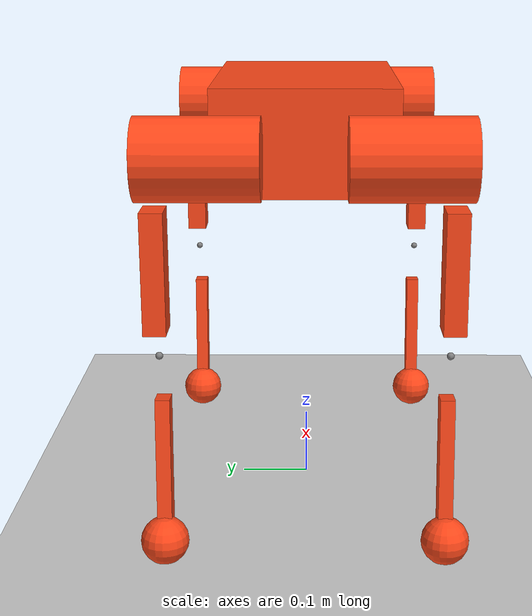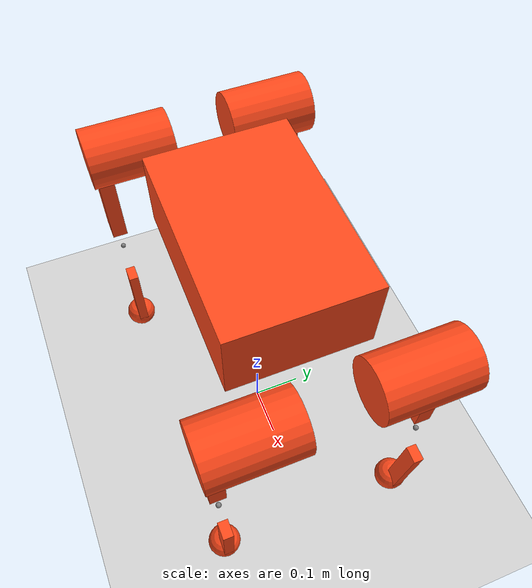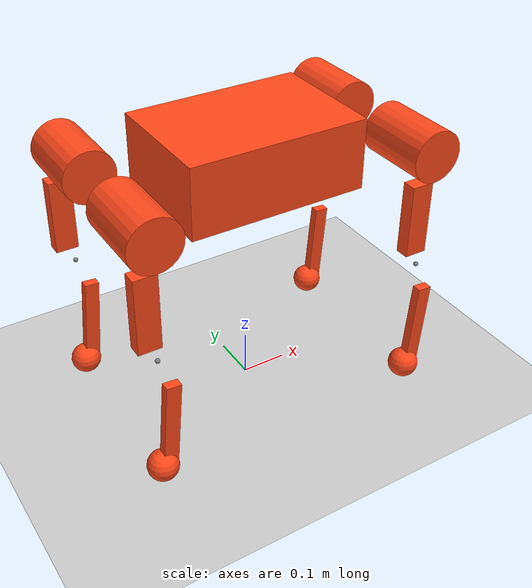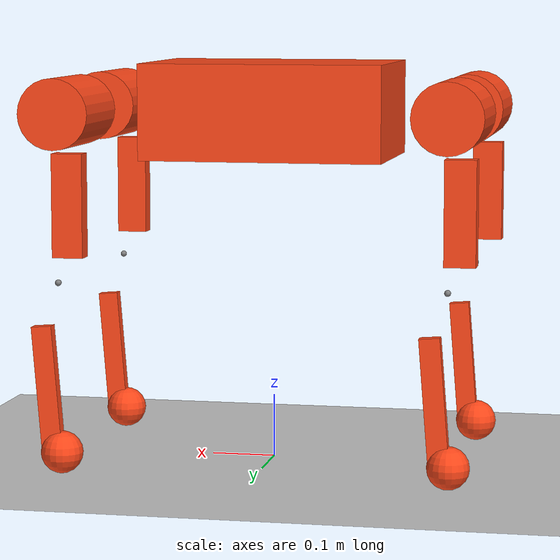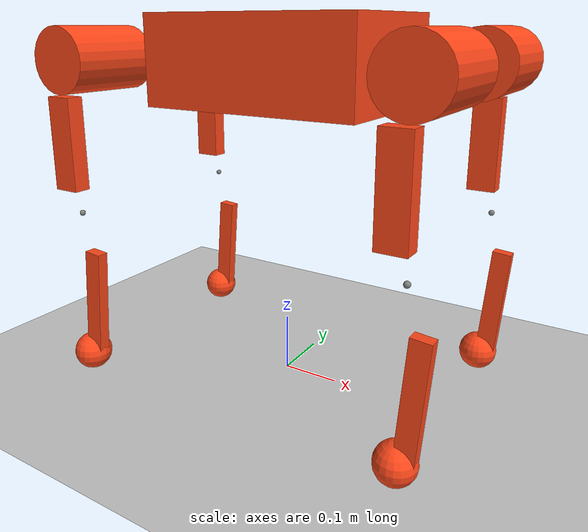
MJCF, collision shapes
<mujoco model="panda3v2">
  <default>
    <default class="robot">
    <joint damping="0.1" armature="0.01" frictionloss="0.2"/>

      <default class="abduction">
        <joint axis="1 0 0" range="-1.047 1.047"/>
        <motor ctrlrange="-60 60"/>
      </default>
      <default class="hip">
        <motor ctrlrange="-60 60"/>
        <default class="front_hip">
          <joint range="-1.571 3.75"/>
        </default>
        <default class="back_hip">
          <joint range="-1.571 3.75"/>
        </default>
      </default>
      <default class="knee">
        <joint range="-2.53 0.35"/>
        <motor ctrlrange="-90 90"/>
      </default>

      <default class="visual">
        <geom material="visualgeom" contype="0" conaffinity="0" group="2" />
      </default>
      <default class="collision">
        <geom material="collision_material" condim="3" contype="0" conaffinity="1" priority="1" group="1" solref="0.005 1" solimp="0.99 0.999 1e-05" friction="2 0.01 0.01" />
      </default>
    </default>
  </default>

  <compiler angle="radian" />

  <asset>
    <material name="blue" rgba="0.7 0.7 0.7 1" />
    <material name="default_material" rgba="0.7 0.7 0.7 1" />
    <material name="collision_material" rgba="1.0 0.28 0.1 0.9" />
    <mesh name="base_link.STL" file="./meshes/base_link.STL" />
    <mesh name="FL_hip_Link.STL" file="./meshes/FL_hip_Link.STL" />
    <mesh name="FL_thigh_Link.STL" file="./meshes/FL_thigh_Link.STL" />
    <mesh name="FL_calf_Link.STL" file="./meshes/FL_calf_Link.STL" />
    <mesh name="FL_foot_Link.STL" file="./meshes/FL_foot_Link.STL" />
    <mesh name="FR_hip_Link.STL" file="./meshes/FR_hip_Link.STL" />
    <mesh name="FR_thigh_Link.STL" file="./meshes/FR_thigh_Link.STL" />
    <mesh name="FR_calf_Link.STL" file="./meshes/FR_calf_Link.STL" />
    <mesh name="FR_foot_Link.STL" file="./meshes/FR_foot_Link.STL" />
    <mesh name="RL_hip_Link.STL" file="./meshes/RL_hip_Link.STL" />
    <mesh name="RL_thigh_Link.STL" file="./meshes/RL_thigh_Link.STL" />
    <mesh name="RL_calf_Link.STL" file="./meshes/RL_calf_Link.STL" />
    <mesh name="RL_foot_Link.STL" file="./meshes/RL_foot_Link.STL" />
    <mesh name="RR_hip_Link.STL" file="./meshes/RR_hip_Link.STL" />
    <mesh name="RR_thigh_Link.STL" file="./meshes/RR_thigh_Link.STL" />
    <mesh name="RR_calf_Link.STL" file="./meshes/RR_calf_Link.STL" />
    <mesh name="RR_foot_Link.STL" file="./meshes/RR_foot_Link.STL" />
  </asset>

  <worldbody>

      <light
          name="light"
          pos="0 0 3"
          dir="0 0 -1"
          diffuse="0.8 0.8 0.8"
      />

      <geom
          name="floor"
          type="plane"
          pos="0 0 0"
          size="10 10 0.1"
          friction="1.0 0.01 0.001"
          contype="1"
          conaffinity="1"
          condim="3"
          rgba="0.8 0.8 0.8 1"
      />

    <body name="base_link" pos="0.00000000 0.00000000 0.55800000" quat="1 0 0 0" childclass="robot">
    <camera name="depth_cam"
        fovy="58"
        pos="0.3895 0 0.1115"
        quat="0.5792279653395693 -0.40557978767263886 -0.4055797876726387 0.5792279653395692"/>
    <inertial
      pos="0.0097705 -0.0002316 -0.0017244"
      mass="21.0994282"
      fullinertia="0.1139705 0.5087214 0.5559912 0.0000566 -0.0128284 0.0002866" />
      <site name="imu" pos="0 0 0" />
      <freejoint name="floating_base" />
      <geom name="base_link_collision" pos="0 0 -0.00" quat="1.0 0.0 0.0 0.0" type="box" size="0.19 0.13 0.075" class="collision" />
      <geom name="base_link_visual" pos="0 0 0" quat="1.0 0.0 0.0 0.0" material="blue" type="mesh" mesh="base_link.STL" class="visual" />
      <body name="FL_hip_Link" pos="0.30112 0.071 0" quat="1.0 0.0 0.0 0.0">
        <joint name="FL_hip_joint" type="hinge" ref="0.0" class="abduction" range="-0.8 0.8" axis="1 0 0" />
        <site name="FL_hip_joint_site" pos="0 0 0" quat="1 0 0 0" />
        <inertial pos="-0.0063170 -0.0104337 0.0000336" quat="1.0 0.0 0.0 0.0" mass="1.2062863" diaginertia="0.0011067 0.0015109 0.0014173" />
        <geom name="FL_hip_Link_visual" pos="0 0 0" quat="1.0 0.0 0.0 0.0" material="blue" type="mesh" mesh="FL_hip_Link.STL" class="visual" />
        <body name="FL_thigh_Link" pos="0 0.12 0" quat="1.0 0.0 0.0 0.0">
          <joint name="FL_thigh_joint" type="hinge" ref="0.0" class="front_hip" range="-1.62 3.735" axis="0 1 0" />
          <site name="FL_thigh_joint_site" pos="0 0 0" quat="1 0 0 0" />
          <inertial pos="-0.0025333 -0.0351757 -0.0240039" quat="1.0 0.0 0.0 0.0" mass="2.1119373" diaginertia="0.011934 0.0110032 0.0035481" />
          <geom name="FL_thigh_Link_collision_0" pos="0 -0.056 0" quat="0.7073882691671998 0.706825181105366 0.0 0.0" type="cylinder" size="0.055 0.08" class="collision" />
          <geom name="FL_thigh_Link_collision_1" pos="-0.019 0 -0.14" quat="1.0 0.0 0.0 0.0" type="box" size="0.024 0.015 0.08" class="collision" />
          <geom name="FL_thigh_Link_visual" pos="0 0 0" quat="1.0 0.0 0.0 0.0" material="blue" type="mesh" mesh="FL_thigh_Link.STL" class="visual" />
          <body name="FL_calf_Link" pos="0 0 -0.26" quat="1.0 0.0 0.0 0.0">
            <joint name="FL_calf_joint" type="hinge" ref="0.0" class="knee" range="-2.443 -0.524" axis="0 1 0" />
            <site name="FL_calf_joint_site" pos="0 0 0" quat="1 0 0 0" />
            <inertial pos="0.0086224 -0.0000233 -0.1393878" quat="1.0 0.0 0.0 0.0" mass="0.2522825" diaginertia="0.003035 0.0030849 7.71e-05" />
            <geom name="FL_calf_Link_collision" pos="0.018 0 -0.17" quat="0.6785569656238399 0.0 0.7345477822465786 0.0" type="box" size="0.1025 0.01 0.016" class="collision" />
            <geom name="FL_calf_Link_visual" pos="0 0 0" quat="1.0 0.0 0.0 0.0" material="blue" type="mesh" mesh="FL_calf_Link.STL" class="visual" />
            <body name="FL_foot_Link" pos="0 0 -0.26" quat="1.0 0.0 0.0 0.0">
              <inertial pos="-0.00856838166588392 4.29463100015681E-05 -0.0136195483876302" quat="1.0 0.0 0.0 0.0" mass="0.0432172775947601" diaginertia="1.16e-05 1.86e-05 1.61e-05" />
              <geom name="FL_foot_Link_collision" pos="-0.003 0 -0.005" quat="1.0 0.0 0.0 0.0" type="sphere" size="0.033" class="collision" />
              <geom name="FL_foot_Link_visual" pos="0 0 0" quat="1.0 0.0 0.0 0.0" material="blue" type="mesh" mesh="FL_foot_Link.STL" class="visual" />
            </body>
          </body>
        </body>
      </body>
      <body name="FR_hip_Link" pos="0.30112 -0.071 0" quat="1.0 0.0 0.0 0.0">
        <joint name="FR_hip_joint" type="hinge" ref="0.0" class="abduction" range="-0.8 0.8" axis="1 0 0" />
        <site name="FR_hip_joint_site" pos="0 0 0" quat="1 0 0 0" />
        <inertial pos="-0.0063193 0.0112453 0.0000215" quat="1.0 0.0 0.0 0.0" mass="1.2062863" diaginertia="0.001111 0.0015108 0.0014247" />
        <geom name="FR_hip_Link_visual" pos="0 0 0" quat="1.0 0.0 0.0 0.0" material="blue" type="mesh" mesh="FR_hip_Link.STL" class="visual" />
        <body name="FR_thigh_Link" pos="0 -0.12 0" quat="1.0 0.0 0.0 0.0">
          <joint name="FR_thigh_joint" type="hinge" ref="0.0" class="front_hip" range="-1.62 3.73" axis="0 1 0" />
          <site name="FR_thigh_joint_site" pos="0 0 0" quat="1 0 0 0" />
          <inertial pos="-0.0025911 0.0351590 -0.0233429" quat="1.0 0.0 0.0 0.0" mass="2.1112879" diaginertia="0.0116509 0.0107174 0.0035417" />
          <geom name="FR_thigh_Link_collision_0" pos="0 0.056 0" quat="0.7073882691671998 0.706825181105366 0.0 0.0" type="cylinder" size="0.055 0.08" class="collision" />
          <geom name="FR_thigh_Link_collision_1" pos="-0.019 0 -0.14" quat="1.0 0.0 0.0 0.0" type="box" size="0.024 0.015 0.08" class="collision" />
          <geom name="FR_thigh_Link_visual" pos="0 0 0" quat="1.0 0.0 0.0 0.0" material="blue" type="mesh" mesh="FR_thigh_Link.STL" class="visual" />
          <body name="FR_calf_Link" pos="0 0 -0.26" quat="1.0 0.0 0.0 0.0">
            <joint name="FR_calf_joint" type="hinge" ref="0.0" class="knee" range="-2.44 -0.52" axis="0 1 0" />
            <site name="FR_calf_joint_site" pos="0 0 0" quat="1 0 0 0" />
            <inertial pos="0.0086224 0.0000168 -0.1393878" quat="1.0 0.0 0.0 0.0" mass="0.2522825" diaginertia="0.003035 0.0030849 7.71e-05" />
            <geom name="FR_calf_Link_collision" pos="0.018 0 -0.17" quat="0.6785569656238399 0.0 0.7345477822465786 0.0" type="box" size="0.1025 0.01 0.016" class="collision" />
            <geom name="FR_calf_Link_visual" pos="0 0 0" quat="1.0 0.0 0.0 0.0" material="blue" type="mesh" mesh="FR_calf_Link.STL" class="visual" />
            <body name="FR_foot_Link" pos="0 0 -0.26" quat="1.0 0.0 0.0 0.0">
              <inertial pos="-0.00856839389569219 4.29458727269072E-05 -0.0136195555784336" quat="1.0 0.0 0.0 0.0" mass="0.0432172596833728" diaginertia="1.16e-05 1.86e-05 1.61e-05" />
              <geom name="FR_foot_Link_collision" pos="-0.003 0 -0.005" quat="1.0 0.0 0.0 0.0" type="sphere" size="0.033" class="collision" />
              <geom name="FR_foot_Link_visual" pos="0 0 0" quat="1.0 0.0 0.0 0.0" material="blue" type="mesh" mesh="FR_foot_Link.STL" class="visual" />
            </body>
          </body>
        </body>
      </body>
      <body name="RL_hip_Link" pos="-0.30112 0.071 0" quat="1.0 0.0 0.0 0.0">
        <joint name="RL_hip_joint" type="hinge" ref="0.0" class="abduction" range="-0.8 0.8" axis="1 0 0" />
        <site name="RL_hip_joint_site" pos="0 0 0" quat="1 0 0 0" />
        <inertial pos="0.0063193 -0.0112382 0.0000215" quat="1.0 0.0 0.0 0.0" mass="1.2062863" diaginertia="0.0011117 0.0015108 0.0014254" />
        <geom name="RL_hip_Link_visual" pos="0 0 0" quat="1.0 0.0 0.0 0.0" material="blue" type="mesh" mesh="RL_hip_Link.STL" class="visual" />
        <body name="RL_thigh_Link" pos="0 0.12 0" quat="1.0 0.0 0.0 0.0">
          <joint name="RL_thigh_joint" type="hinge" ref="0.0" class="back_hip" range="-1.62 3.73" axis="0 1 0" />
          <site name="RL_thigh_joint_site" pos="0 0 0" quat="1 0 0 0" />
          <inertial pos="-0.0025928 -0.0351757 -0.0235082" quat="1.0 0.0 0.0 0.0" mass="2.1119373" diaginertia="0.0116952 0.0107683 0.0035521" />
          <geom name="RL_thigh_Link_collision_0" pos="0 -0.056 0" quat="0.7073882691671998 0.706825181105366 0.0 0.0" type="cylinder" size="0.055 0.08" class="collision" />
          <geom name="RL_thigh_Link_collision_1" pos="-0.019 0 -0.14" quat="1.0 0.0 0.0 0.0" type="box" size="0.024 0.015 0.08" class="collision" />
          <geom name="RL_thigh_Link_visual" pos="0 0 0" quat="1.0 0.0 0.0 0.0" material="blue" type="mesh" mesh="RL_thigh_Link.STL" class="visual" />
          <body name="RL_calf_Link" pos="0 0 -0.26" quat="1.0 0.0 0.0 0.0">
            <joint name="RL_calf_joint" type="hinge" ref="0.0" class="knee" range="-2.44 -0.52" axis="0 1 0" />
            <site name="RL_calf_joint_site" pos="0 0 0" quat="1 0 0 0" />
            <inertial pos="0.0086224 0.0000500 -0.1393878" quat="1.0 0.0 0.0 0.0" mass="0.2522825" diaginertia="0.003035 0.0030849 7.71e-05" />
            <geom name="RL_calf_Link_collision" pos="0.018 0 -0.17" quat="0.6785569656238399 0.0 0.7345477822465786 0.0" type="box" size="0.1025 0.01 0.016" class="collision" />
            <geom name="RL_calf_Link_visual" pos="0 0 0" quat="1.0 0.0 0.0 0.0" material="blue" type="mesh" mesh="RL_calf_Link.STL" class="visual" />
            <body name="RL_foot_Link" pos="0 0 -0.26" quat="1.0 0.0 0.0 0.0">
              <inertial pos="-0.00856837350876061 4.29345320518415E-05 -0.0136195228137627" quat="1.0 0.0 0.0 0.0" mass="0.0432172612927212" diaginertia="1.16e-05 1.86e-05 1.61e-05" />
              <geom name="RL_foot_Link_collision" pos="-0.003 0 -0.005" quat="1.0 0.0 0.0 0.0" type="sphere" size="0.033" class="collision" />
              <geom name="RL_foot_Link_visual" pos="0 0 0" quat="1.0 0.0 0.0 0.0" material="blue" type="mesh" mesh="RL_foot_Link.STL" class="visual" />
            </body>
          </body>
        </body>
      </body>
      <body name="RR_hip_Link" pos="-0.30112 -0.071 0" quat="1.0 0.0 0.0 0.0">
        <joint name="RR_hip_joint" type="hinge" ref="0.0" class="abduction" range="-0.8 0.8" axis="1 0 0" />
        <site name="RR_hip_joint_site" pos="0 0 0" quat="1 0 0 0" />
        <inertial pos="0.0060691 0.0112453 0.0001065" quat="1.0 0.0 0.0 0.0" mass="1.2062863" diaginertia="0.0011131 0.0015145 0.0014264" />
        <geom name="RR_hip_Link_visual" pos="0 0 0" quat="1.0 0.0 0.0 0.0" material="blue" type="mesh" mesh="RR_hip_Link.STL" class="visual" />
        <body name="RR_thigh_Link" pos="0 -0.12 0" quat="1.0 0.0 0.0 0.0">
          <joint name="RR_thigh_joint" type="hinge" ref="0.0" class="back_hip" range="-1.62 3.73" axis="0 1 0" />
          <site name="RR_thigh_joint_site" pos="0 0 0" quat="1 0 0 0" />
          <inertial pos="-0.0020895 0.0351533 -0.0236942" quat="1.0 0.0 0.0 0.0" mass="2.1112879" diaginertia="0.0117955 0.0108567 0.0035375" />
          <geom name="RR_thigh_Link_collision_0" pos="0 0.056 0" quat="0.7073882691671998 0.706825181105366 0.0 0.0" type="cylinder" size="0.055 0.08" class="collision" />
          <geom name="RR_thigh_Link_collision_1" pos="-0.019 0 -0.14" quat="1.0 0.0 0.0 0.0" type="box" size="0.024 0.015 0.08" class="collision" />
          <geom name="RR_thigh_Link_visual" pos="0 0 0" quat="1.0 0.0 0.0 0.0" material="blue" type="mesh" mesh="RR_thigh_Link.STL" class="visual" />
          <body name="RR_calf_Link" pos="0 0 -0.26" quat="1.0 0.0 0.0 0.0">
            <joint name="RR_calf_joint" type="hinge" ref="0.0" class="knee" range="-2.44 -0.52" axis="0 1 0" />
            <site name="RR_calf_joint_site" pos="0 0 0" quat="1 0 0 0" />
            <inertial pos="0.0086224 0.0000134 -0.1393878" quat="1.0 0.0 0.0 0.0" mass="0.2522825" diaginertia="0.003035 0.0030849 7.71e-05" />
            <geom name="RR_calf_Link_collision" pos="0.018 0 -0.17" quat="0.6785569656238399 0.0 0.7345477822465786 0.0" type="box" size="0.1025 0.01 0.016" class="collision" />
            <geom name="RR_calf_Link_visual" pos="0 0 0" quat="1.0 0.0 0.0 0.0" material="blue" type="mesh" mesh="RR_calf_Link.STL" class="visual" />
            <body name="RR_foot_Link" pos="0 0 -0.260000000000001" quat="1.0 0.0 0.0 0.0">
              <inertial pos="-0.00856837316558678 4.29343732643028E-05 -0.0136195231552007" quat="1.0 0.0 0.0 0.0" mass="0.0432172623070608" diaginertia="1.16e-05 1.86e-05 1.61e-05" />
              <geom name="RR_foot_Link_collision" pos="-0.003 0 -0.005" quat="1.0 0.0 0.0 0.0" type="sphere" size="0.033" class="collision" />
              <geom name="RR_foot_Link_visual" pos="0 0 0" quat="1.0 0.0 0.0 0.0" material="blue" type="mesh" mesh="RR_foot_Link.STL" class="visual" />
            </body>
          </body>
        </body>
      </body>
      <site name="base_link_site" pos="0 0 0" quat="1 0 0 0" />
      <camera name="front_camera" mode="track" fovy="90.0" quat="4.329780281177467e-17 4.329780281177466e-17 0.7071067811865475 0.7071067811865476" pos="0.0 2.0 0.5" />
      <camera name="side_camera" mode="track" fovy="90.0" quat="-0.5 -0.4999999999999999 0.5 0.5000000000000001" pos="-2.0 0.0 0.5" />
    </body>
  </worldbody>

  <actuator>

    <motor class="abduction" name="FL_hip_joint_ctrl" joint="FL_hip_joint"  />
    <motor class="hip" name="FL_thigh_joint_ctrl" joint="FL_thigh_joint" />
    <motor class="knee" name="FL_calf_joint_ctrl" joint="FL_calf_joint" />

    <motor class="abduction" name="FR_hip_joint_ctrl" joint="FR_hip_joint" />
    <motor class="hip" name="FR_thigh_joint_ctrl" joint="FR_thigh_joint" />
    <motor class="knee" name="FR_calf_joint_ctrl" joint="FR_calf_joint" />

    <motor class="abduction" name="RL_hip_joint_ctrl" joint="RL_hip_joint" />
    <motor class="hip" name="RL_thigh_joint_ctrl" joint="RL_thigh_joint" />
    <motor class="knee" name="RL_calf_joint_ctrl" joint="RL_calf_joint" />

    <motor class="abduction" name="RR_hip_joint_ctrl" joint="RR_hip_joint" />
    <motor class="hip" name="RR_thigh_joint_ctrl" joint="RR_thigh_joint" />
    <motor class="knee" name="RR_calf_joint_ctrl" joint="RR_calf_joint" />
  </actuator>

<sensor>

    <jointpos name="FL_hip_pos" joint="FL_hip_joint" />
    <jointpos name="FL_thigh_pos" joint="FL_thigh_joint" />
    <jointpos name="FL_calf_pos" joint="FL_calf_joint" />

    <jointpos name="FR_hip_pos" joint="FR_hip_joint" />
    <jointpos name="FR_thigh_pos" joint="FR_thigh_joint" />
    <jointpos name="FR_calf_pos" joint="FR_calf_joint" />

    <jointpos name="RL_hip_pos" joint="RL_hip_joint" />
    <jointpos name="RL_thigh_pos" joint="RL_thigh_joint" />
    <jointpos name="RL_calf_pos" joint="RL_calf_joint" />

    <jointpos name="RR_hip_pos" joint="RR_hip_joint" />
    <jointpos name="RR_thigh_pos" joint="RR_thigh_joint" />
    <jointpos name="RR_calf_pos" joint="RR_calf_joint" />

    <jointvel name="FL_hip_vel" joint="FL_hip_joint" />
    <jointvel name="FL_thigh_vel" joint="FL_thigh_joint" />
    <jointvel name="FL_calf_vel" joint="FL_calf_joint" />

    <jointvel name="FR_hip_vel" joint="FR_hip_joint" />
    <jointvel name="FR_thigh_vel" joint="FR_thigh_joint" />
    <jointvel name="FR_calf_vel" joint="FR_calf_joint" />

    <jointvel name="RL_hip_vel" joint="RL_hip_joint" />
    <jointvel name="RL_thigh_vel" joint="RL_thigh_joint" />
    <jointvel name="RL_calf_vel" joint="RL_calf_joint" />

    <jointvel name="RR_hip_vel" joint="RR_hip_joint" />
    <jointvel name="RR_thigh_vel" joint="RR_thigh_joint" />
    <jointvel name="RR_calf_vel" joint="RR_calf_joint" />

    <jointactuatorfrc name="FL_hip_torque" joint="FL_hip_joint" />
    <jointactuatorfrc name="FL_thigh_torque" joint="FL_thigh_joint" />
    <jointactuatorfrc name="FL_calf_torque" joint="FL_calf_joint" />

    <jointactuatorfrc name="FR_hip_torque" joint="FR_hip_joint" />
    <jointactuatorfrc name="FR_thigh_torque" joint="FR_thigh_joint" />
    <jointactuatorfrc name="FR_calf_torque" joint="FR_calf_joint" />

    <jointactuatorfrc name="RL_hip_torque" joint="RL_hip_joint"  />
    <jointactuatorfrc name="RL_thigh_torque" joint="RL_thigh_joint"  />
    <jointactuatorfrc name="RL_calf_torque" joint="RL_calf_joint"  />

    <jointactuatorfrc name="RR_hip_torque" joint="RR_hip_joint" />
    <jointactuatorfrc name="RR_thigh_torque" joint="RR_thigh_joint" />
    <jointactuatorfrc name="RR_calf_torque" joint="RR_calf_joint" />

    <framequat name="imu_quat" objtype="site" objname="imu" />
    <gyro name="imu_gyro" site="imu" />
    <accelerometer name="imu_acc" site="imu" />

    <framepos name="frame_pos" objtype="site" objname="imu" />
    <framelinvel name="frame_vel" objtype="site" objname="imu" />

  </sensor>
</mujoco>
